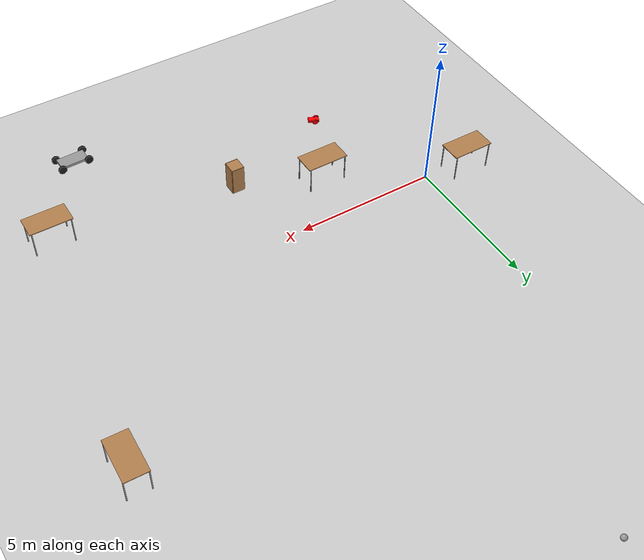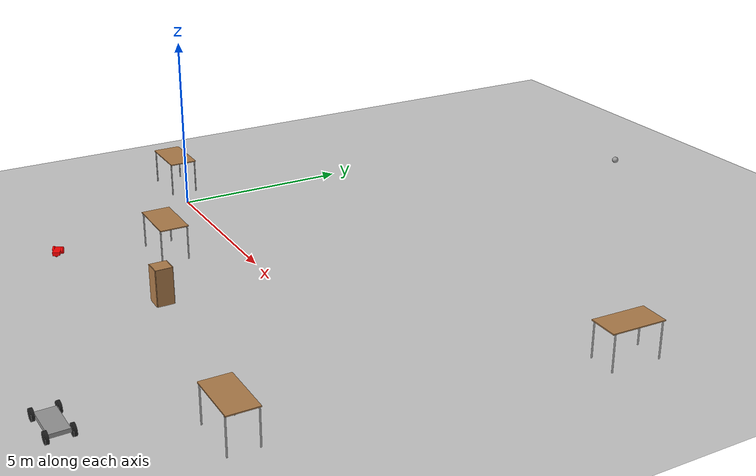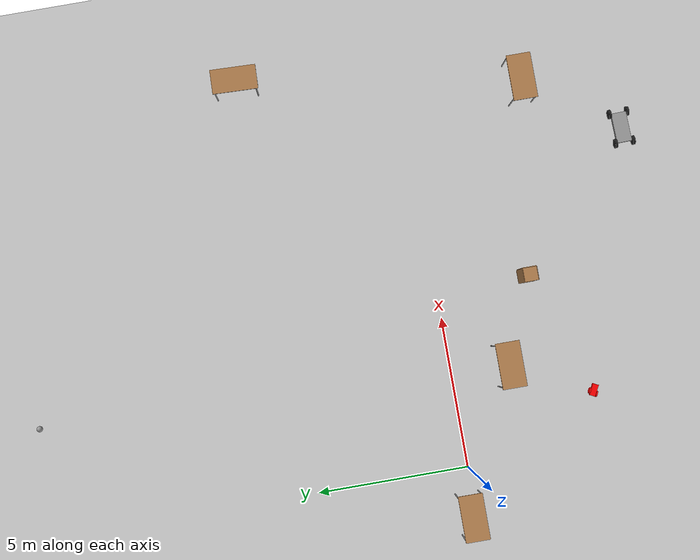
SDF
<sdf version="1.6">
 <world name="default">
  <model name="ground_plane">
   <static>1</static>
   <link name="link">
    <collision name="collision">
     <geometry><plane><normal>0 0 1</normal><size>100 100</size></plane></geometry>
     <surface><friction><ode><mu>100</mu><mu2>50</mu2></ode></friction></surface>
    </collision>
    <visual name="visual">
     <cast_shadows>0</cast_shadows>
     <geometry><plane><normal>0 0 1</normal><size>100 100</size></plane></geometry>
     <material>
      <script><uri>file://media/materials/scripts/gazebo.material</uri><name>Gazebo/Grey</name></script>
     </material>
    </visual>
   </link>
  </model>
  <model name="HumanoidRobot_0">
   <link name="link_0">
    <pose>-0.053333 0.003341 0 0 -0 0</pose>
    <inertial>
     <mass>1</mass>
     <inertia>
      <ixx>0.166667</ixx>
      <ixy>0</ixy>
      <ixz>0</ixz>
      <iyy>0.166667</iyy>
      <iyz>0</iyz>
      <izz>0.166667</izz>
     </inertia>
    </inertial>
    <visual name="ModelPreview_0::link_0::visual_1">
     <pose>-0.15 0 -0.05 0 -0 0</pose>
     <geometry><sphere><radius>0.05</radius></sphere></geometry>
     <material>
      <lighting>1</lighting>
      <script><uri>file://media/materials/scripts/gazebo.material</uri><name>Gazebo/Grey</name></script>
      <shader type="pixel"><normal_map>__default__</normal_map></shader>
      <ambient>1 0 0 1</ambient>
      <diffuse>1 0 0 1</diffuse>
      <specular>1 0 0 1</specular>
      <emissive>0 0 0 1</emissive>
     </material>
    </visual>
    <visual name="visual">
     <geometry><box><size>0.4 0.2 0.1</size></box></geometry>
     <material>
      <lighting>1</lighting>
      <script><uri>file://media/materials/scripts/gazebo.material</uri><name>Gazebo/Grey</name></script>
      <shader type="pixel"><normal_map>__default__</normal_map></shader>
      <ambient>1 0 0 1</ambient>
      <diffuse>1 0 0 1</diffuse>
      <specular>1 0 0 1</specular>
      <emissive>0 0 0 1</emissive>
     </material>
    </visual>
    <collision name="collision_1">
     <pose>-0.15 0 -0.05 0 -0 0</pose>
     <geometry><sphere><radius>0.05</radius></sphere></geometry>
     <surface>
      <friction>
       <ode><mu>0</mu><mu2>0</mu2><fdir1>0 0 0</fdir1><slip1>1</slip1><slip2>1</slip2></ode>
       <torsional>
        <coefficient>1</coefficient>
        <patch_radius>0</patch_radius>
        <surface_radius>0</surface_radius>
        <use_patch_radius>1</use_patch_radius>
        <ode><slip>0</slip></ode>
       </torsional>
      </friction>
      <bounce><restitution_coefficient>0</restitution_coefficient><threshold>1e+06</threshold></bounce>
      <contact>
       <collide_without_contact>0</collide_without_contact>
       <collide_without_contact_bitmask>1</collide_without_contact_bitmask>
       <collide_bitmask>1</collide_bitmask>
       <ode>
        <soft_cfm>0</soft_cfm>
        <soft_erp>0.2</soft_erp>
        <kp>1e+13</kp>
        <kd>1</kd>
        <max_vel>0.01</max_vel>
        <min_depth>0</min_depth>
       </ode>
       <bullet>
        <split_impulse>1</split_impulse>
        <split_impulse_penetration_threshold>-0.01</split_impulse_penetration_threshold>
        <soft_cfm>0</soft_cfm>
        <soft_erp>0.2</soft_erp>
        <kp>1e+13</kp>
        <kd>1</kd>
       </bullet>
      </contact>
     </surface>
    </collision>
    <collision name="collision">
     <geometry><box><size>0.4 0.2 0.1</size></box></geometry>
     <surface>
      <friction>
       <ode><mu>1</mu><mu2>1</mu2><fdir1>0 0 0</fdir1><slip1>0</slip1><slip2>0</slip2></ode>
       <torsional>
        <coefficient>1</coefficient>
        <patch_radius>0</patch_radius>
        <surface_radius>0</surface_radius>
        <use_patch_radius>1</use_patch_radius>
        <ode><slip>0</slip></ode>
       </torsional>
      </friction>
      <bounce><restitution_coefficient>0</restitution_coefficient><threshold>1e+06</threshold></bounce>
      <contact>
       <collide_without_contact>0</collide_without_contact>
       <collide_without_contact_bitmask>1</collide_without_contact_bitmask>
       <collide_bitmask>1</collide_bitmask>
       <ode>
        <soft_cfm>0</soft_cfm>
        <soft_erp>0.2</soft_erp>
        <kp>1e+13</kp>
        <kd>1</kd>
        <max_vel>0.01</max_vel>
        <min_depth>0</min_depth>
       </ode>
       <bullet>
        <split_impulse>1</split_impulse>
        <split_impulse_penetration_threshold>-0.01</split_impulse_penetration_threshold>
        <soft_cfm>0</soft_cfm>
        <soft_erp>0.2</soft_erp>
        <kp>1e+13</kp>
        <kd>1</kd>
       </bullet>
      </contact>
     </surface>
    </collision>
   </link>
   <link name="link_1">
    <pose>0.006667 -0.121672 0 1.5707 -0 0</pose>
    <inertial>
     <mass>1</mass>
     <inertia><ixx>0.145833</ixx><ixy>0</ixy><ixz>0</ixz><iyy>0.145833</iyy><iyz>0</iyz><izz>0.125</izz></inertia>
    </inertial>
    <visual name="visual">
     <geometry><cylinder><radius>0.1</radius><length>0.05</length></cylinder></geometry>
     <material>
      <lighting>1</lighting>
      <script><uri>file://media/materials/scripts/gazebo.material</uri><name>Gazebo/Grey</name></script>
      <shader type="pixel"><normal_map>__default__</normal_map></shader>
      <ambient>1 0 0 1</ambient>
      <diffuse>1 0 0 1</diffuse>
      <specular>1 0 0 1</specular>
      <emissive>0 0 0 1</emissive>
     </material>
    </visual>
    <collision name="collision">
     <geometry><cylinder><radius>0.1</radius><length>0.05</length></cylinder></geometry>
     <surface>
      <friction>
       <ode><mu>1</mu><mu2>1</mu2><fdir1>0 0 0</fdir1><slip1>0</slip1><slip2>0</slip2></ode>
       <torsional>
        <coefficient>1</coefficient>
        <patch_radius>0</patch_radius>
        <surface_radius>0</surface_radius>
        <use_patch_radius>1</use_patch_radius>
        <ode><slip>0</slip></ode>
       </torsional>
      </friction>
      <bounce><restitution_coefficient>0</restitution_coefficient><threshold>1e+06</threshold></bounce>
      <contact>
       <collide_without_contact>0</collide_without_contact>
       <collide_without_contact_bitmask>1</collide_without_contact_bitmask>
       <collide_bitmask>1</collide_bitmask>
       <ode>
        <soft_cfm>0</soft_cfm>
        <soft_erp>0.2</soft_erp>
        <kp>1e+13</kp>
        <kd>1</kd>
        <max_vel>0.01</max_vel>
        <min_depth>0</min_depth>
       </ode>
       <bullet>
        <split_impulse>1</split_impulse>
        <split_impulse_penetration_threshold>-0.01</split_impulse_penetration_threshold>
        <soft_cfm>0</soft_cfm>
        <soft_erp>0.2</soft_erp>
        <kp>1e+13</kp>
        <kd>1</kd>
       </bullet>
      </contact>
     </surface>
    </collision>
   </link>
   <link name="link_1_clone">
    <pose>0.046667 0.118331 0 1.5707 -0 0</pose>
    <inertial>
     <mass>1</mass>
     <inertia><ixx>0.145833</ixx><ixy>0</ixy><ixz>0</ixz><iyy>0.145833</iyy><iyz>0</iyz><izz>0.125</izz></inertia>
    </inertial>
    <visual name="visual">
     <geometry><cylinder><radius>0.1</radius><length>0.05</length></cylinder></geometry>
     <material>
      <lighting>1</lighting>
      <script><uri>file://media/materials/scripts/gazebo.material</uri><name>Gazebo/Grey</name></script>
      <shader type="pixel"><normal_map>__default__</normal_map></shader>
      <ambient>1 0 0 1</ambient>
      <diffuse>1 0 0 1</diffuse>
      <specular>1 0 0 1</specular>
      <emissive>0 0 0 1</emissive>
     </material>
    </visual>
    <collision name="collision">
     <geometry><cylinder><radius>0.1</radius><length>0.05</length></cylinder></geometry>
     <surface>
      <friction>
       <ode><mu>1</mu><mu2>1</mu2><fdir1>0 0 0</fdir1><slip1>0</slip1><slip2>0</slip2></ode>
       <torsional>
        <coefficient>1</coefficient>
        <patch_radius>0</patch_radius>
        <surface_radius>0</surface_radius>
        <use_patch_radius>1</use_patch_radius>
        <ode><slip>0</slip></ode>
       </torsional>
      </friction>
      <bounce><restitution_coefficient>0</restitution_coefficient><threshold>1e+06</threshold></bounce>
      <contact>
       <collide_without_contact>0</collide_without_contact>
       <collide_without_contact_bitmask>1</collide_without_contact_bitmask>
       <collide_bitmask>1</collide_bitmask>
       <ode>
        <soft_cfm>0</soft_cfm>
        <soft_erp>0.2</soft_erp>
        <kp>1e+13</kp>
        <kd>1</kd>
        <max_vel>0.01</max_vel>
        <min_depth>0</min_depth>
       </ode>
       <bullet>
        <split_impulse>1</split_impulse>
        <split_impulse_penetration_threshold>-0.01</split_impulse_penetration_threshold>
        <soft_cfm>0</soft_cfm>
        <soft_erp>0.2</soft_erp>
        <kp>1e+13</kp>
        <kd>1</kd>
       </bullet>
      </contact>
     </surface>
    </collision>
   </link>
   <joint name="link_0_JOINT_0" type="revolute">
    <parent>link_0</parent>
    <child>link_1</child>
    <axis>
     <xyz>0 0 1</xyz>
     <use_parent_model_frame>0</use_parent_model_frame>
     <limit>
      <lower>-1.79769e+308</lower>
      <upper>1.79769e+308</upper>
      <effort>-1</effort>
      <velocity>-1</velocity>
     </limit>
     <dynamics>
      <spring_reference>0</spring_reference>
      <spring_stiffness>0</spring_stiffness>
      <damping>0</damping>
     </dynamics>
    </axis>
    <physics>
     <ode><limit><cfm>0</cfm><erp>0.2</erp></limit><suspension><cfm>0</cfm><erp>0.2</erp></suspension></ode>
    </physics>
   </joint>
   <joint name="link_0_JOINT_1" type="revolute">
    <parent>link_0</parent>
    <child>link_1_clone</child>
    <axis>
     <xyz>0 0 1</xyz>
     <use_parent_model_frame>0</use_parent_model_frame>
     <limit>
      <lower>-1.79769e+308</lower>
      <upper>1.79769e+308</upper>
      <effort>-1</effort>
      <velocity>-1</velocity>
     </limit>
     <dynamics>
      <spring_reference>0</spring_reference>
      <spring_stiffness>0</spring_stiffness>
      <damping>0</damping>
     </dynamics>
    </axis>
    <physics>
     <ode><limit><cfm>0</cfm><erp>0.2</erp></limit><suspension><cfm>0</cfm><erp>0.2</erp></suspension></ode>
    </physics>
   </joint>
   <static>0</static>
   <pose>1.74661 -4.51152 0.100002 -1e-06 -1.1e-05 2.6717</pose>
  </model>
  <model name="table">
   <static>1</static>
   <link name="link">
    <collision name="surface">
     <pose>0 0 1 0 -0 0</pose>
     <geometry><box><size>1.5 0.8 0.03</size></box></geometry>
     <surface><friction><ode><mu>0.6</mu><mu2>0.6</mu2></ode></friction></surface>
    </collision>
    <visual name="visual1">
     <pose>0 0 1 0 -0 0</pose>
     <geometry><box><size>1.5 0.8 0.03</size></box></geometry>
     <material>
      <script><uri>file://media/materials/scripts/gazebo.material</uri><name>Gazebo/Wood</name></script>
     </material>
    </visual>
    <collision name="front_left_leg">
     <pose>0.68 0.38 0.5 0 -0 0</pose>
     <geometry><cylinder><radius>0.02</radius><length>1</length></cylinder></geometry>
    </collision>
    <visual name="front_left_leg">
     <pose>0.68 0.38 0.5 0 -0 0</pose>
     <geometry><cylinder><radius>0.02</radius><length>1</length></cylinder></geometry>
     <material>
      <script><uri>file://media/materials/scripts/gazebo.material</uri><name>Gazebo/Grey</name></script>
     </material>
    </visual>
    <collision name="front_right_leg">
     <pose>0.68 -0.38 0.5 0 -0 0</pose>
     <geometry><cylinder><radius>0.02</radius><length>1</length></cylinder></geometry>
    </collision>
    <visual name="front_right_leg">
     <pose>0.68 -0.38 0.5 0 -0 0</pose>
     <geometry><cylinder><radius>0.02</radius><length>1</length></cylinder></geometry>
     <material>
      <script><uri>file://media/materials/scripts/gazebo.material</uri><name>Gazebo/Grey</name></script>
     </material>
    </visual>
    <collision name="back_right_leg">
     <pose>-0.68 -0.38 0.5 0 -0 0</pose>
     <geometry><cylinder><radius>0.02</radius><length>1</length></cylinder></geometry>
    </collision>
    <visual name="back_right_leg">
     <pose>-0.68 -0.38 0.5 0 -0 0</pose>
     <geometry><cylinder><radius>0.02</radius><length>1</length></cylinder></geometry>
     <material>
      <script><uri>file://media/materials/scripts/gazebo.material</uri><name>Gazebo/Grey</name></script>
     </material>
    </visual>
    <collision name="back_left_leg">
     <pose>-0.68 0.38 0.5 0 -0 0</pose>
     <geometry><cylinder><radius>0.02</radius><length>1</length></cylinder></geometry>
    </collision>
    <visual name="back_left_leg">
     <pose>-0.68 0.38 0.5 0 -0 0</pose>
     <geometry><cylinder><radius>0.02</radius><length>1</length></cylinder></geometry>
     <material>
      <script><uri>file://media/materials/scripts/gazebo.material</uri><name>Gazebo/Grey</name></script>
     </material>
    </visual>
   </link>
   <pose>12.3187 -3.86475 0 0 -0 0</pose>
  </model>
  <model name="table_clone">
   <static>1</static>
   <link name="link">
    <collision name="surface">
     <pose>0 0 1 0 -0 0</pose>
     <geometry><box><size>1.5 0.8 0.03</size></box></geometry>
     <surface><friction><ode><mu>0.6</mu><mu2>0.6</mu2></ode></friction></surface>
    </collision>
    <visual name="visual1">
     <pose>0 0 1 0 -0 0</pose>
     <geometry><box><size>1.5 0.8 0.03</size></box></geometry>
     <material>
      <script><uri>file://media/materials/scripts/gazebo.material</uri><name>Gazebo/Wood</name></script>
     </material>
    </visual>
    <collision name="front_left_leg">
     <pose>0.68 0.38 0.5 0 -0 0</pose>
     <geometry><cylinder><radius>0.02</radius><length>1</length></cylinder></geometry>
    </collision>
    <visual name="front_left_leg">
     <pose>0.68 0.38 0.5 0 -0 0</pose>
     <geometry><cylinder><radius>0.02</radius><length>1</length></cylinder></geometry>
     <material>
      <script><uri>file://media/materials/scripts/gazebo.material</uri><name>Gazebo/Grey</name></script>
     </material>
    </visual>
    <collision name="front_right_leg">
     <pose>0.68 -0.38 0.5 0 -0 0</pose>
     <geometry><cylinder><radius>0.02</radius><length>1</length></cylinder></geometry>
    </collision>
    <visual name="front_right_leg">
     <pose>0.68 -0.38 0.5 0 -0 0</pose>
     <geometry><cylinder><radius>0.02</radius><length>1</length></cylinder></geometry>
     <material>
      <script><uri>file://media/materials/scripts/gazebo.material</uri><name>Gazebo/Grey</name></script>
     </material>
    </visual>
    <collision name="back_right_leg">
     <pose>-0.68 -0.38 0.5 0 -0 0</pose>
     <geometry><cylinder><radius>0.02</radius><length>1</length></cylinder></geometry>
    </collision>
    <visual name="back_right_leg">
     <pose>-0.68 -0.38 0.5 0 -0 0</pose>
     <geometry><cylinder><radius>0.02</radius><length>1</length></cylinder></geometry>
     <material>
      <script><uri>file://media/materials/scripts/gazebo.material</uri><name>Gazebo/Grey</name></script>
     </material>
    </visual>
    <collision name="back_left_leg">
     <pose>-0.68 0.38 0.5 0 -0 0</pose>
     <geometry><cylinder><radius>0.02</radius><length>1</length></cylinder></geometry>
    </collision>
    <visual name="back_left_leg">
     <pose>-0.68 0.38 0.5 0 -0 0</pose>
     <geometry><cylinder><radius>0.02</radius><length>1</length></cylinder></geometry>
     <material>
      <script><uri>file://media/materials/scripts/gazebo.material</uri><name>Gazebo/Grey</name></script>
     </material>
    </visual>
   </link>
   <pose>3.12494 -1.83773 0 0 -0 0</pose>
  </model>
  <model name="table_clone_0">
   <static>1</static>
   <link name="link">
    <collision name="surface">
     <pose>0 0 1 0 -0 0</pose>
     <geometry><box><size>1.5 0.8 0.03</size></box></geometry>
     <surface><friction><ode><mu>0.6</mu><mu2>0.6</mu2></ode></friction></surface>
    </collision>
    <visual name="visual1">
     <pose>0 0 1 0 -0 0</pose>
     <geometry><box><size>1.5 0.8 0.03</size></box></geometry>
     <material>
      <script><uri>file://media/materials/scripts/gazebo.material</uri><name>Gazebo/Wood</name></script>
     </material>
    </visual>
    <collision name="front_left_leg">
     <pose>0.68 0.38 0.5 0 -0 0</pose>
     <geometry><cylinder><radius>0.02</radius><length>1</length></cylinder></geometry>
    </collision>
    <visual name="front_left_leg">
     <pose>0.68 0.38 0.5 0 -0 0</pose>
     <geometry><cylinder><radius>0.02</radius><length>1</length></cylinder></geometry>
     <material>
      <script><uri>file://media/materials/scripts/gazebo.material</uri><name>Gazebo/Grey</name></script>
     </material>
    </visual>
    <collision name="front_right_leg">
     <pose>0.68 -0.38 0.5 0 -0 0</pose>
     <geometry><cylinder><radius>0.02</radius><length>1</length></cylinder></geometry>
    </collision>
    <visual name="front_right_leg">
     <pose>0.68 -0.38 0.5 0 -0 0</pose>
     <geometry><cylinder><radius>0.02</radius><length>1</length></cylinder></geometry>
     <material>
      <script><uri>file://media/materials/scripts/gazebo.material</uri><name>Gazebo/Grey</name></script>
     </material>
    </visual>
    <collision name="back_right_leg">
     <pose>-0.68 -0.38 0.5 0 -0 0</pose>
     <geometry><cylinder><radius>0.02</radius><length>1</length></cylinder></geometry>
    </collision>
    <visual name="back_right_leg">
     <pose>-0.68 -0.38 0.5 0 -0 0</pose>
     <geometry><cylinder><radius>0.02</radius><length>1</length></cylinder></geometry>
     <material>
      <script><uri>file://media/materials/scripts/gazebo.material</uri><name>Gazebo/Grey</name></script>
     </material>
    </visual>
    <collision name="back_left_leg">
     <pose>-0.68 0.38 0.5 0 -0 0</pose>
     <geometry><cylinder><radius>0.02</radius><length>1</length></cylinder></geometry>
    </collision>
    <visual name="back_left_leg">
     <pose>-0.68 0.38 0.5 0 -0 0</pose>
     <geometry><cylinder><radius>0.02</radius><length>1</length></cylinder></geometry>
     <material>
      <script><uri>file://media/materials/scripts/gazebo.material</uri><name>Gazebo/Grey</name></script>
     </material>
    </visual>
   </link>
   <pose>-1.48723 0.201904 0 0 -0 0</pose>
  </model>
  <model name="table_clone_clone_0_clone_0">
   <static>1</static>
   <link name="link">
    <collision name="surface">
     <pose>0 0 1 0 -0 0</pose>
     <geometry><box><size>1.5 0.8 0.03</size></box></geometry>
     <surface><friction><ode><mu>0.6</mu><mu2>0.6</mu2></ode></friction></surface>
    </collision>
    <visual name="visual1">
     <pose>0 0 1 0 -0 0</pose>
     <geometry><box><size>1.5 0.8 0.03</size></box></geometry>
     <material>
      <script><uri>file://media/materials/scripts/gazebo.material</uri><name>Gazebo/Wood</name></script>
     </material>
    </visual>
    <collision name="front_left_leg">
     <pose>0.68 0.38 0.5 0 -0 0</pose>
     <geometry><cylinder><radius>0.02</radius><length>1</length></cylinder></geometry>
    </collision>
    <visual name="front_left_leg">
     <pose>0.68 0.38 0.5 0 -0 0</pose>
     <geometry><cylinder><radius>0.02</radius><length>1</length></cylinder></geometry>
     <material>
      <script><uri>file://media/materials/scripts/gazebo.material</uri><name>Gazebo/Grey</name></script>
     </material>
    </visual>
    <collision name="front_right_leg">
     <pose>0.68 -0.38 0.5 0 -0 0</pose>
     <geometry><cylinder><radius>0.02</radius><length>1</length></cylinder></geometry>
    </collision>
    <visual name="front_right_leg">
     <pose>0.68 -0.38 0.5 0 -0 0</pose>
     <geometry><cylinder><radius>0.02</radius><length>1</length></cylinder></geometry>
     <material>
      <script><uri>file://media/materials/scripts/gazebo.material</uri><name>Gazebo/Grey</name></script>
     </material>
    </visual>
    <collision name="back_right_leg">
     <pose>-0.68 -0.38 0.5 0 -0 0</pose>
     <geometry><cylinder><radius>0.02</radius><length>1</length></cylinder></geometry>
    </collision>
    <visual name="back_right_leg">
     <pose>-0.68 -0.38 0.5 0 -0 0</pose>
     <geometry><cylinder><radius>0.02</radius><length>1</length></cylinder></geometry>
     <material>
      <script><uri>file://media/materials/scripts/gazebo.material</uri><name>Gazebo/Grey</name></script>
     </material>
    </visual>
    <collision name="back_left_leg">
     <pose>-0.68 0.38 0.5 0 -0 0</pose>
     <geometry><cylinder><radius>0.02</radius><length>1</length></cylinder></geometry>
    </collision>
    <visual name="back_left_leg">
     <pose>-0.68 0.38 0.5 0 -0 0</pose>
     <geometry><cylinder><radius>0.02</radius><length>1</length></cylinder></geometry>
     <material>
      <script><uri>file://media/materials/scripts/gazebo.material</uri><name>Gazebo/Grey</name></script>
     </material>
    </visual>
   </link>
   <pose>13.8345 5.41323 0 0 0 -1.60509</pose>
  </model>
  <model name="my_ball">
   <link name="link_0">
    <inertial>
     <mass>1</mass>
     <inertia><ixx>0.1</ixx><ixy>0</ixy><ixz>0</ixz><iyy>0.1</iyy><iyz>0</iyz><izz>0.1</izz></inertia>
    </inertial>
    <visual name="visual">
     <geometry><sphere><radius>0.1</radius></sphere></geometry>
     <material>
      <lighting>1</lighting>
      <script><uri>file://media/materials/scripts/gazebo.material</uri><name>Gazebo/Grey</name></script>
      <shader type="pixel"><normal_map>__default__</normal_map></shader>
      <ambient>1 1 1 1</ambient>
      <diffuse>1 1 1 1</diffuse>
      <specular>1 1 1 1</specular>
      <emissive>0 0 0 1</emissive>
     </material>
    </visual>
    <collision name="collision">
     <geometry><sphere><radius>0.1</radius></sphere></geometry>
     <surface>
      <friction>
       <ode><mu>1</mu><mu2>1</mu2><fdir1>0 0 0</fdir1><slip1>0</slip1><slip2>0</slip2></ode>
       <torsional>
        <coefficient>1</coefficient>
        <patch_radius>0</patch_radius>
        <surface_radius>0</surface_radius>
        <use_patch_radius>1</use_patch_radius>
        <ode><slip>0</slip></ode>
       </torsional>
      </friction>
      <bounce><restitution_coefficient>0</restitution_coefficient><threshold>1e+06</threshold></bounce>
      <contact>
       <collide_without_contact>0</collide_without_contact>
       <collide_without_contact_bitmask>1</collide_without_contact_bitmask>
       <collide_bitmask>1</collide_bitmask>
       <ode>
        <soft_cfm>0</soft_cfm>
        <soft_erp>0.2</soft_erp>
        <kp>1e+13</kp>
        <kd>1</kd>
        <max_vel>0.01</max_vel>
        <min_depth>0</min_depth>
       </ode>
       <bullet>
        <split_impulse>1</split_impulse>
        <split_impulse_penetration_threshold>-0.01</split_impulse_penetration_threshold>
        <soft_cfm>0</soft_cfm>
        <soft_erp>0.2</soft_erp>
        <kp>1e+13</kp>
        <kd>1</kd>
       </bullet>
      </contact>
     </surface>
    </collision>
   </link>
   <static>0</static>
   <pose>3.66155 13.7437 0.1 0 -0 0</pose>
  </model>
  <model name="ball_bearing">
   <link name="link">
    <pose>0 0 0.003 0 -0 0</pose>
    <inertial>
     <mass>0.0011</mass>
     <inertia>
      <ixx>3.96e-09</ixx>
      <ixy>0</ixy>
      <ixz>0</ixz>
      <iyy>3.96e-09</iyy>
      <iyz>0</iyz>
      <izz>3.96e-09</izz>
     </inertia>
    </inertial>
    <collision name="collision">
     <geometry><sphere><radius>0.003</radius></sphere></geometry>
     <surface>
      <contact>
       <poissons_ratio>0.305</poissons_ratio>
       <elastic_modulus>2e+11</elastic_modulus>
       <ode><kp>100000</kp><kd>100</kd><max_vel>100</max_vel><min_depth>0.001</min_depth></ode>
      </contact>
      <friction>
       <torsional>
        <coefficient>1</coefficient>
        <use_patch_radius>0</use_patch_radius>
        <surface_radius>0.01</surface_radius>
       </torsional>
      </friction>
     </surface>
    </collision>
    <visual name="visual">
     <geometry><sphere><radius>0.003</radius></sphere></geometry>
     <material>
      <script><uri>file://media/materials/scripts/gazebo.material</uri><name>Gazebo/Grey</name></script>
     </material>
    </visual>
    <velocity_decay><linear>0</linear><angular>0.005</angular></velocity_decay>
   </link>
   <pose>4.01174 -5.64859 -0.00075 0 -0 0</pose>
  </model>
  <model name="cabinet">
   <static>1</static>
   <link name="cabinet_bottom_plate">
    <inertial>
     <pose>0 0 -1 0 -0 0</pose>
     <inertia><ixx>2.05</ixx><ixy>0</ixy><ixz>0</ixz><iyy>2.05</iyy><iyz>0</iyz><izz>2.05</izz></inertia>
     <mass>25</mass>
    </inertial>
    <collision name="cabinet_bottom_plate_geom">
     <pose>0 0 0.01 0 -0 0</pose>
     <geometry><box><size>0.45 0.45 0.02</size></box></geometry>
    </collision>
    <visual name="cabinet_bottom_plate_geom_visual">
     <pose>0 0 0.01 0 -0 0</pose>
     <geometry><box><size>0.45 0.45 0.02</size></box></geometry>
     <material>
      <script><uri>file://media/materials/scripts/gazebo.material</uri><name>Gazebo/Wood</name></script>
     </material>
    </visual>
    <collision name="cabinet_bottom_plate_geom_cabinet_back_plate">
     <pose>0.235 0 0.51 0 -0 0</pose>
     <geometry><box><size>0.02 0.45 1.02</size></box></geometry>
    </collision>
    <visual name="cabinet_bottom_plate_geom_cabinet_back_plate_visual">
     <pose>0.235 0 0.51 0 -0 0</pose>
     <geometry><box><size>0.02 0.45 1.02</size></box></geometry>
     <material>
      <script><uri>file://media/materials/scripts/gazebo.material</uri><name>Gazebo/Wood</name></script>
     </material>
    </visual>
    <collision name="cabinet_bottom_plate_geom_cabinet_left_plate">
     <pose>0 0.235 0.51 0 -0 0</pose>
     <geometry><box><size>0.45 0.02 1.02</size></box></geometry>
    </collision>
    <visual name="cabinet_bottom_plate_geom_cabinet_left_plate_visual">
     <pose>0 0.235 0.51 0 -0 0</pose>
     <geometry><box><size>0.45 0.02 1.02</size></box></geometry>
     <material>
      <script><uri>file://media/materials/scripts/gazebo.material</uri><name>Gazebo/Wood</name></script>
     </material>
    </visual>
    <collision name="cabinet_bottom_plate_geom_cabinet_middle_plate">
     <pose>0 0 0.51 0 -0 0</pose>
     <geometry><box><size>0.45 0.45 0.02</size></box></geometry>
    </collision>
    <visual name="cabinet_bottom_plate_geom_cabinet_middle_plate_visual">
     <pose>0 0 0.51 0 -0 0</pose>
     <geometry><box><size>0.45 0.45 0.02</size></box></geometry>
     <material>
      <script><uri>file://media/materials/scripts/gazebo.material</uri><name>Gazebo/Wood</name></script>
     </material>
    </visual>
    <collision name="cabinet_bottom_plate_geom_cabinet_right_plate">
     <pose>0 -0.235 0.51 0 -0 0</pose>
     <geometry><box><size>0.45 0.02 1.02</size></box></geometry>
    </collision>
    <visual name="cabinet_bottom_plate_geom_cabinet_right_plate_visual">
     <pose>0 -0.235 0.51 0 -0 0</pose>
     <geometry><box><size>0.45 0.02 1.02</size></box></geometry>
     <material>
      <script><uri>file://media/materials/scripts/gazebo.material</uri><name>Gazebo/Wood</name></script>
     </material>
    </visual>
    <collision name="cabinet_bottom_plate_geom_cabinet_top_plate">
     <pose>0 0 1.01 0 -0 0</pose>
     <geometry><box><size>0.45 0.45 0.02</size></box></geometry>
    </collision>
    <visual name="cabinet_bottom_plate_geom_cabinet_top_plate_visual">
     <pose>0 0 1.01 0 -0 0</pose>
     <geometry><box><size>0.45 0.45 0.02</size></box></geometry>
     <material>
      <script><uri>file://media/materials/scripts/gazebo.material</uri><name>Gazebo/Wood</name></script>
     </material>
    </visual>
   </link>
   <pose>5.90815 -2.98163 0 0 -0 0</pose>
  </model>
  <model name="cart_front_steer">
   <link name="chassis">
    <pose>0 0 0.15 0 -0 0</pose>
    <inertial>
     <pose>0.1 0 0 0 -0 0</pose>
     <mass>10</mass>
     <inertia>
      <ixx>0.216667</ixx>
      <iyy>0.841667</iyy>
      <izz>1.04167</izz>
      <ixy>0</ixy>
      <ixz>0</ixz>
      <iyz>0</iyz>
     </inertia>
    </inertial>
    <collision name="collision"><geometry><box><size>1 0.5 0.1</size></box></geometry></collision>
    <visual name="visual">
     <geometry><box><size>1 0.5 0.1</size></box></geometry>
     <material>
      <script><uri>file://media/materials/scripts/gazebo.material</uri><name>Gazebo/Grey</name></script>
     </material>
    </visual>
   </link>
   <link name="wheel_front_left">
    <pose>0.5 0.298 0.15 -1.5708 -0.087266 0</pose>
    <inertial>
     <mass>0.5</mass>
     <inertia>
      <ixx>0.00307917</ixx>
      <iyy>0.00307917</iyy>
      <izz>0.005625</izz>
      <ixy>0</ixy>
      <ixz>0</ixz>
      <iyz>0</iyz>
     </inertia>
    </inertial>
    <collision name="collision">
     <geometry><cylinder><radius>0.15</radius><length>0.08</length></cylinder></geometry>
    </collision>
    <visual name="visual">
     <geometry><cylinder><radius>0.15</radius><length>0.08</length></cylinder></geometry>
     <material>
      <script><uri>file://media/materials/scripts/gazebo.material</uri><name>Gazebo/Black</name></script>
     </material>
    </visual>
   </link>
   <joint name="wheel_front_left_steer_spin" type="universal">
    <parent>chassis</parent>
    <child>wheel_front_left</child>
    <axis>
     <xyz>0 -1 0</xyz>
     <limit><lower>-0.610865</lower><upper>0.610865</upper></limit>
     <use_parent_model_frame>0</use_parent_model_frame>
     <dynamics><spring_reference>0</spring_reference><spring_stiffness>0</spring_stiffness></dynamics>
    </axis>
    <axis2>
     <xyz>0 0 1</xyz>
     <use_parent_model_frame>0</use_parent_model_frame>
     <dynamics><spring_reference>0</spring_reference><spring_stiffness>0</spring_stiffness></dynamics>
    </axis2>
   </joint>
   <link name="wheel_front_right">
    <pose>0.5 -0.298 0.15 -1.5708 -0.087266 0</pose>
    <inertial>
     <mass>0.5</mass>
     <inertia>
      <ixx>0.00307917</ixx>
      <iyy>0.00307917</iyy>
      <izz>0.005625</izz>
      <ixy>0</ixy>
      <ixz>0</ixz>
      <iyz>0</iyz>
     </inertia>
    </inertial>
    <collision name="collision">
     <geometry><cylinder><radius>0.15</radius><length>0.08</length></cylinder></geometry>
    </collision>
    <visual name="visual">
     <geometry><cylinder><radius>0.15</radius><length>0.08</length></cylinder></geometry>
     <material>
      <script><uri>file://media/materials/scripts/gazebo.material</uri><name>Gazebo/Black</name></script>
     </material>
    </visual>
   </link>
   <joint name="wheel_front_right_steer_spin" type="universal">
    <parent>chassis</parent>
    <child>wheel_front_right</child>
    <axis>
     <xyz>0 -1 0</xyz>
     <limit><lower>-0.610865</lower><upper>0.610865</upper></limit>
     <use_parent_model_frame>0</use_parent_model_frame>
     <dynamics><spring_reference>0</spring_reference><spring_stiffness>0</spring_stiffness></dynamics>
    </axis>
    <axis2>
     <xyz>0 0 1</xyz>
     <use_parent_model_frame>0</use_parent_model_frame>
     <dynamics><spring_reference>0</spring_reference><spring_stiffness>0</spring_stiffness></dynamics>
    </axis2>
   </joint>
   <link name="wheel_rear_left">
    <pose>-0.5 0.298 0.15 -1.5708 0 0</pose>
    <inertial>
     <mass>0.5</mass>
     <inertia>
      <ixx>0.00307917</ixx>
      <iyy>0.00307917</iyy>
      <izz>0.005625</izz>
      <ixy>0</ixy>
      <ixz>0</ixz>
      <iyz>0</iyz>
     </inertia>
    </inertial>
    <collision name="collision">
     <geometry><cylinder><radius>0.15</radius><length>0.08</length></cylinder></geometry>
    </collision>
    <visual name="visual">
     <geometry><cylinder><radius>0.15</radius><length>0.08</length></cylinder></geometry>
     <material>
      <script><uri>file://media/materials/scripts/gazebo.material</uri><name>Gazebo/Black</name></script>
     </material>
    </visual>
   </link>
   <joint name="wheel_rear_left_spin" type="revolute">
    <parent>chassis</parent>
    <child>wheel_rear_left</child>
    <axis>
     <xyz>0 0 1</xyz>
     <use_parent_model_frame>0</use_parent_model_frame>
     <limit><lower>-1e+16</lower><upper>1e+16</upper></limit>
     <dynamics><spring_reference>0</spring_reference><spring_stiffness>0</spring_stiffness></dynamics>
    </axis>
   </joint>
   <link name="wheel_rear_right">
    <pose>-0.5 -0.298 0.15 -1.5708 0 0</pose>
    <inertial>
     <mass>0.5</mass>
     <inertia>
      <ixx>0.00307917</ixx>
      <iyy>0.00307917</iyy>
      <izz>0.005625</izz>
      <ixy>0</ixy>
      <ixz>0</ixz>
      <iyz>0</iyz>
     </inertia>
    </inertial>
    <collision name="collision">
     <geometry><cylinder><radius>0.15</radius><length>0.08</length></cylinder></geometry>
    </collision>
    <visual name="visual">
     <geometry><cylinder><radius>0.15</radius><length>0.08</length></cylinder></geometry>
     <material>
      <script><uri>file://media/materials/scripts/gazebo.material</uri><name>Gazebo/Black</name></script>
     </material>
    </visual>
   </link>
   <joint name="wheel_rear_right_spin" type="revolute">
    <parent>chassis</parent>
    <child>wheel_rear_right</child>
    <axis>
     <xyz>0 0 1</xyz>
     <use_parent_model_frame>0</use_parent_model_frame>
     <limit><lower>-1e+16</lower><upper>1e+16</upper></limit>
     <dynamics><spring_reference>0</spring_reference><spring_stiffness>0</spring_stiffness></dynamics>
    </axis>
   </joint>
   <pose>10.2489 -7.02023 -8e-06 2.5e-05 -1e-06 0.028747</pose>
  </model>
 </world>
</sdf>
